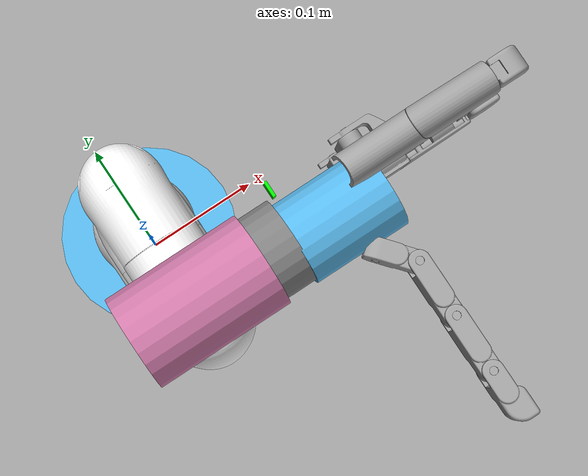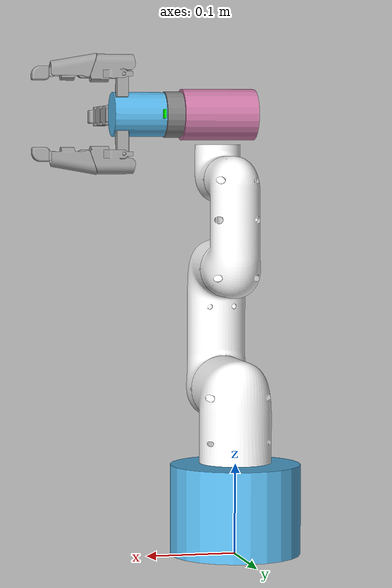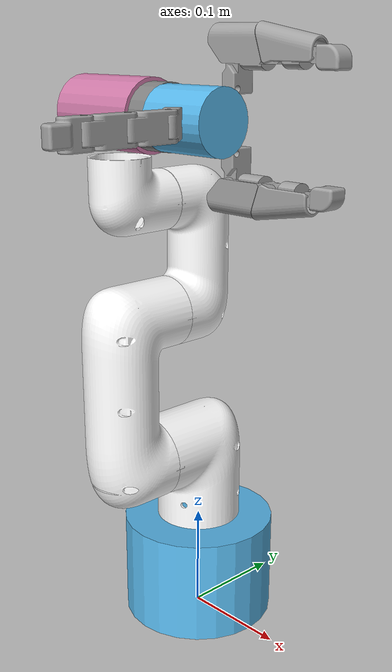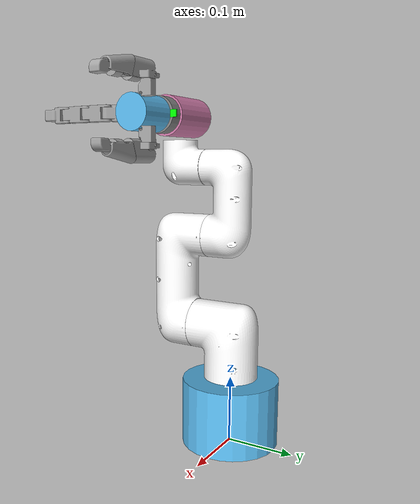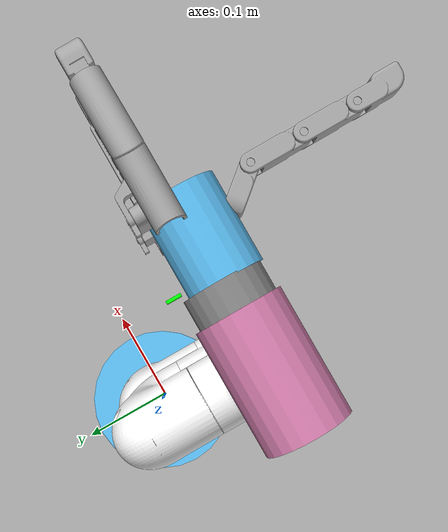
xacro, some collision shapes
<?xml version="1.0"?>
<robot xmlns:xacro="http://www.ros.org/wiki/xacro" name="mycobot_320_moveit">

    <link name="world" />
    <joint name="world2base" type="fixed">
        <parent link="world" />
        <child link="base_link" />
    </joint>
    <link name="base_link">
        <visual>
            <geometry>
                <mesh filename="package://mycobot_320_moveit/urdf/320_urdf/base.dae" />
            </geometry>
            <origin xyz="0 0 0 " rpy=" 0 0 3.1415926" />
        </visual>
        <collision>
            <origin xyz="0 0 0.05 " rpy=" 0 0 3.1415926" />
            <geometry>
                <cylinder length="0.100" radius="0.0725" />
            </geometry>
        </collision>
        <inertial>
            <mass value="1.0" />
            <inertia ixx="0.00218" iyy="0.00218" izz="0.00263" ixy="0.0" ixz="0.0" iyz="0.0" />

        </inertial>
    </link>
    <link name="link1">
        <visual>
            <geometry>
                <mesh filename="package://mycobot_320_moveit/urdf/320_urdf/link1_1.dae" />
            </geometry>
            <origin xyz="0 0 0 " rpy=" 0 0 0" />
        </visual>
        <collision>
            <origin xyz="0 0 -0.02 " rpy=" 0 0 0" />
            <geometry>
                <cylinder length="0.106" radius="0.043" />
            </geometry>
        </collision>
        <inertial>
            <mass value="0.5" />
            <inertia ixx="0.00070" iyy="0.00070" izz="0.00046" ixy="0.0" ixz="0.0" iyz="0.0" />

        </inertial>
    </link>
    <link name="link2">
        <visual>
            <geometry>
                <mesh filename="package://mycobot_320_moveit/urdf/320_urdf/link2.dae" />
            </geometry>
            <origin xyz="0 0 0.0587 " rpy=" 0 0 3.1415926" />
        </visual>
        <collision>
            <origin xyz="0.07 0 0.095 " rpy="0 -1.5708 0" />
            <geometry>
                <cylinder length="0.18" radius="0.036" />
            </geometry>
        </collision>
        <inertial>
            <mass value="0.7" />
            <inertia ixx="0.00212" iyy="0.00212" izz="0.00045" ixy="0.0" ixz="0.0" iyz="0.0" />
        </inertial>
    </link>
    <link name="link3">
        <visual>
            <geometry>
                <mesh filename="package://mycobot_320_moveit/urdf/320_urdf/link3.dae" />
            </geometry>
            <origin xyz="0 0 0.038 " rpy=" 0 0 3.1415926" />
        </visual>
        <collision>
            <origin xyz="0.044 0 0 " rpy=" 0 -1.5708 0" />
            <geometry>
                <cylinder length="0.14" radius="0.0305" />
            </geometry>
        </collision>
        <inertial>
            <mass value="0.5" />
            <inertia ixx="0.00093" iyy="0.00093" izz="0.00023" ixy="0.0" ixz="0.0" iyz="0.0" />

        </inertial>
    </link>
    <link name="link4">
        <visual>
            <geometry>
                <mesh filename="package://mycobot_320_moveit/urdf/320_urdf/link4.dae" />
            </geometry>
            <origin xyz="0 -0.001 0 " rpy=" 0 0 0" />
        </visual>
        <collision>
            <origin xyz="0.0 -0.014 0 " rpy=" 0 -1.5708 1.5708" />
            <geometry>
                <cylinder length="0.083" radius="0.029" />
            </geometry>
        </collision>
        <inertial>
            <mass value="0.2" />
            <inertia ixx="0.00016" iyy="0.00016" izz="0.00008" ixy="0.0" ixz="0.0" iyz="0.0" />

        </inertial>
    </link>
    <link name="link5">
        <visual>
            <geometry>
                <mesh filename="package://mycobot_320_moveit/urdf/320_urdf/link5.dae" />
            </geometry>
            <origin xyz="0 0.002  0 " rpy=" 0  0 3.1415926" />
        </visual>
        <collision>
            <origin xyz="0 0.0 0 " rpy=" 1.5708 1.5708 0" />
            <geometry>
                <cylinder length="0.0849" radius="0.029" />
            </geometry>
        </collision>
        <inertial>
            <mass value="0.2" />
            <inertia ixx="0.00016" iyy="0.00016" izz="0.00008" ixy="0.0" ixz="0.0" iyz="0.0" />

        </inertial>
    </link>
    <link name="link6">
        <visual>
            <geometry>
                <mesh filename="package://mycobot_320_moveit/urdf/320_urdf/link6.dae" />
            </geometry>
            <material name="grey">
                <color rgba="0.5 0.5 0.5 1" />
            </material>
            <origin xyz="-0.502 -0.090 -0.096 " rpy=" 0 1.5708 0" />
        </visual>
        <collision>
            <origin xyz="0.0 0 -0.015 " rpy=" 0 0 0" />
            <geometry>
                <cylinder length="0.022" radius="0.026" />
            </geometry>
        </collision>
        <inertial>
            <mass value="0.2" />
            <inertia ixx="0.00002" iyy="0.00002" izz="0.00003" ixy="0.0" ixz="0.0" iyz="0.0" />

        </inertial>
    </link>

    <joint name="arm_joint_0" type="revolute">
        <axis xyz="0 0 1" />
        <limit effort="100.0" lower="-2.96706" upper="2.96706" velocity="5" />
        <parent link="base_link" />
        <child link="link1" />
        <origin xyz="0 0 0.17846" rpy="0 0 0" />
    </joint>
    <joint name="arm_joint_1" type="revolute">
        <axis xyz="0 0 1" />
        <limit effort="100.0" lower="-2.7925268" upper="2.7925268" velocity="5" />
        <parent link="link1" />
        <child link="link2" />
        <origin xyz="0 0 0" rpy="0 -1.5708 1.5708" />
    </joint>
    <joint name="arm_joint_2" type="revolute">
        <axis xyz=" 0 0 1" />
        <limit effort="100.0" lower="-2.7925268" upper="2.7925268" velocity="5" />
        <parent link="link2" />
        <child link="link3" />
        <origin xyz="0.13635 0 0   " rpy="0 0 0" />
    </joint>
    <joint name="arm_joint_3" type="revolute">
        <axis xyz=" 0 0 1" />
        <limit effort="100.0" lower="-2.7925268" upper="2.7925268" velocity="5" />
        <parent link="link3" />
        <child link="link4" />
        <origin xyz="0.1 0 0.09 " rpy=" 0 0 1.57080" />
    </joint>
    <joint name="arm_joint_4" type="revolute">
        <axis xyz="0 0 1" />
        <limit effort="100.0" lower="-2.96706" upper="2.96706" velocity="5" />
        <parent link="link4" />
        <child link="link5" />
        <origin xyz="0 -0.07318 0" rpy="1.5708 -1.5708 0" />
    </joint>
    <joint name="arm_joint_5" type="revolute">
        <axis xyz="0 0 1" />
        <limit effort="100.0" lower="-3.054326" upper="3.054326" velocity="5" />
        <parent link="link5" />
        <child link="link6" />
        <origin xyz="0.00 0.06635 0" rpy="-1.5708 0 0" />
    </joint>

    <joint name="link6_to_magsensor" type="fixed">
        <parent link="link6" />
        <child link="magsensor" />
        <origin xyz="-0.03 -0.0 0.001" rpy="0 0 -1.5708 " />
    </joint>

    <link name="magsensor">
        <visual>
            <geometry>
                <box size="0.01 0.01 0.002" />
            </geometry>
            <material name="green">
                <color rgba="0 1 0  1" />
            </material>
            <origin xyz="0 0 0 " rpy=" 0 0 0" />
        </visual>
        <collision>
            <origin xyz="0.0 0 0.0 " rpy=" 0 0 0" />
            <geometry>
                <box size="0.01 0.002 0.01" />
            </geometry>
        </collision>
        <inertial>
            <mass value="0.2" />
            <inertia ixx="0.00002" iyy="0.00002" izz="0.00003" ixy="0.0" ixz="0.0" iyz="0.0" />

        </inertial>
    </link>

    <xacro:include filename="$(find mycobot_320_moveit)/urdf/k3hand.urdf.xacro" />
    <joint name="arm_to_hand" type="fixed">
        <parent link="link6" />
        <child link="wrist" />
        <origin xyz="-0.012  0 0.025" rpy="-1.57080 0 1.57080" />
    </joint>

    <xacro:macro name="transmission_macro" params="part index">
        <transmission name="${part}_tran_${index}">
            <type>transmission_interface/SimpleTransmission</type>
            <joint name="${part}_joint_${index}">
                <hardwareInterface>hardware_interface/PositionJointInterface</hardwareInterface>
            </joint>
            <actuator name="${part}_motor_${index}">
                <hardwareInterface>PositionJointInterface</hardwareInterface>
                <mechanicalReduction>1</mechanicalReduction>
            </actuator>
        </transmission>
    </xacro:macro>

    <xacro:transmission_macro index="0" part="arm" />
    <xacro:transmission_macro index="1" part="arm" />
    <xacro:transmission_macro index="2" part="arm" />
    <xacro:transmission_macro index="3" part="arm" />
    <xacro:transmission_macro index="4" part="arm" />
    <xacro:transmission_macro index="5" part="arm" />
    <xacro:transmission_macro index="0" part="hand" />
    <xacro:transmission_macro index="1" part="hand" />
    <xacro:transmission_macro index="2" part="hand" />
    <xacro:transmission_macro index="3" part="hand" />
    <xacro:transmission_macro index="4" part="hand" />
    <xacro:transmission_macro index="5" part="hand" />
    <xacro:transmission_macro index="6" part="hand" />
    <xacro:transmission_macro index="7" part="hand" />
    <!--ros_control
  plugin-->
    <gazebo>
        <plugin name="gazebo_ros_control" filename="libgazebo_ros_control.so" />
    </gazebo>
    <!--joint_state_publisher
  plugin-->
    <gazebo>
        <plugin name="joint_state_publisher" filename="libgazebo_ros_joint_state_publisher.so">
            <jointName>arm_joint_0, arm_joint_1, arm_joint_2, arm_joint_3, arm_joint_4, arm_joint_5,
                hand_joint_0, hand_joint_1, hand_joint_2, hand_joint_3, hand_joint_4, hand_joint_5,
                hand_joint_6, hand_joint_7</jointName>
        </plugin>
    </gazebo>
</robot>

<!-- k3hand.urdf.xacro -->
<robot xmlns:xacro="http://ros.org/wiki/xacro" name="k3hand">

  <link name="wrist">
    <visual>
      <geometry>
        <mesh filename="package://mycobot_320_moveit/urdf/k3_urdf/wrist.dae" />
      </geometry>
      <origin xyz="0 0 0" rpy="0 0 0" />
    </visual>
    <collision>
      <geometry>
        <cylinder length="0.06" radius="0.025" />
      </geometry>
      <origin xyz="0 0 -0.015" rpy="-1.570796 0 0" />
    </collision>
    <inertial>
      <mass value="0.1" />
      <inertia ixx="1.0" ixy="0.0" ixz="0.0" iyy="1.0" iyz="0.0" izz="1.0" />
    </inertial>
  </link>
  <link name="thumb_met">
    <visual>
      <geometry>
        <mesh filename="package://mycobot_320_moveit/urdf/k3_urdf/thumb_met.dae" />
      </geometry>
      <origin xyz="0.0 0.0080 0.043" rpy="0 0 0" />
    </visual>
    <collision>
      <geometry>
        <box size="0.0225 0.035 0.012" />
      </geometry>
      <origin xyz="0.0 -0.007 -0.008" rpy="0.88 0 0" />
    </collision>
    <inertial>
      <mass value="0.01" />
      <inertia ixx="1.0" ixy="0.0" ixz="0.0" iyy="1.0" iyz="0.0" izz="1.0" />
    </inertial>
  </link>
  <link name="thumb_middle_1">
    <visual>
      <geometry>
        <mesh filename="package://mycobot_320_moveit/urdf/k3_urdf/thumb_middle_1.dae" />
      </geometry>
      <origin xyz="0.0 0.0225 0.0607" />
    </visual>
    <collision>
      <geometry>
        <box size="0.0225 0.012 0.05" />
      </geometry>
      <origin xyz="0.0 0.0 -0.02" rpy="0 0 0" />
    </collision>
    <inertial>
      <mass value="0.01" />
      <inertia ixx="1.0" ixy="0.0" ixz="0.0" iyy="1.0" iyz="0.0" izz="1.0" />
    </inertial>
  </link>
  <link name="thumb_middle_2">
    <visual>
      <geometry>
        <mesh filename="package://mycobot_320_moveit/urdf/k3_urdf/thumb_middle_2.dae" />
      </geometry>
      <origin xyz="0.0 0.0225 0.0965" />
    </visual>
    <collision>
      <geometry>
        <box size="0.0225 0.012 0.05" />
      </geometry>
      <origin xyz="0.0 0.0 -0.02" rpy="0 0 0" />
    </collision>
    <inertial>
      <mass value="0.01" />
      <inertia ixx="1.0" ixy="0.0" ixz="0.0" iyy="1.0" iyz="0.0" izz="1.0" />
    </inertial>
  </link>

  <link name="thumb_tip">
    <visual>
      <geometry>
        <mesh filename="package://mycobot_320_moveit/urdf/k3_urdf/thumb_tip.dae" />
      </geometry>
      <origin xyz="0.0 0.0225 0.1325" />
    </visual>
    <collision>
      <geometry>
        <box size="0.0225 0.015 0.040" />
      </geometry>
      <origin xyz="0.0 -0.0015 -0.015" rpy="0 0 0" />
    </collision>
    <inertial>
      <mass value="0.01" />
      <inertia ixx="1.0" ixy="0.0" ixz="0.0" iyy="1.0" iyz="0.0" izz="1.0" />
    </inertial>
  </link>

  <link name="fing_met_1">
    <visual>
      <geometry>
        <mesh filename="package://mycobot_320_moveit/urdf/k3_urdf/fing_met_1.dae" />
      </geometry>
      <origin xyz="0.0225 0.0225 0.00" rpy="0.0 0.0 0.0" />
    </visual>
    <collision>
      <geometry>
        <box size="0.020 0.012 0.03" />
      </geometry>
      <origin xyz="0.006 -0.0 0.011" />
    </collision>

    <inertial>
      <mass value="0.01" />
      <inertia ixx="1.0" ixy="0.0" ixz="0.0" iyy="1.0" iyz="0.0" izz="1.0" />
    </inertial>
  </link>

  <link name="fing_base_1">
    <visual>
      <geometry>
        <mesh filename="package://mycobot_320_moveit/urdf/k3_urdf/fing_base_1.dae" />
      </geometry>
      <origin xyz="0.015 0.0225 -0.022" />
    </visual>
    <collision>
      <geometry>
        <box size="0.030 0.03 0.05" />
      </geometry>
      <origin xyz="-0.002 0.008 0.01" />
    </collision>
    <inertial>
      <mass value="0.01" />
      <inertia ixx="1.0" ixy="0.0" ixz="0.0" iyy="1.0" iyz="0.0" izz="1.0" />
    </inertial>
  </link>

  <link name="fing_middle_1">
    <visual>
      <geometry>
        <mesh filename="package://mycobot_320_moveit/urdf/k3_urdf/fing_middle_1.dae" />
      </geometry>
      <origin xyz="0.015 0.0225 -0.022" />
    </visual>
    <collision>
      <geometry>
        <box size="0.020 0.03 0.05" />
      </geometry>
      <origin xyz="-0.007 0.008 0.058" />
    </collision>
    <inertial>
      <mass value="0.01" />
      <inertia ixx="1.0" ixy="0.0" ixz="0.0" iyy="1.0" iyz="0.0" izz="1.0" />
    </inertial>
  </link>
  <link name="fing_tip_1">
    <visual>
      <geometry>
        <mesh filename="package://mycobot_320_moveit/urdf/k3_urdf/fing_tip_1.dae" />
      </geometry>
      <origin xyz="0.015 0.0225 -0.022" />
    </visual>
    <collision>
      <geometry>
        <box size="0.020 0.015 0.02" />
      </geometry>
      <origin xyz="-0.007 0.00 0.09" />
    </collision>
    <inertial>
      <mass value="0.01" />
      <inertia ixx="1.0" ixy="0.0" ixz="0.0" iyy="1.0" iyz="0.0" izz="1.0" />
    </inertial>
  </link>

  <link name="fing_met_2">
    <visual>
      <geometry>
        <mesh filename="package://mycobot_320_moveit/urdf/k3_urdf/fing_met_2.dae" />
      </geometry>
      <origin xyz="-0.0225 0.0225 0.00" rpy="0.0 0.0 0.0" />
    </visual>
    <collision>
      <geometry>
        <box size="0.020 0.0120 0.03" />
      </geometry>
      <origin xyz="-0.006 -0.0 0.011" />
    </collision>

    <inertial>
      <mass value="0.01" />
      <inertia ixx="1.0" ixy="0.0" ixz="0.0" iyy="1.0" iyz="0.0" izz="1.0" />
    </inertial>
  </link>
  <link name="fing_base_2">
    <visual>
      <geometry>
        <mesh filename="package://mycobot_320_moveit/urdf/k3_urdf/fing_base_2.dae" />
      </geometry>
      <origin xyz="-0.015 0.0225 -0.022" />
    </visual>
    <collision>
      <geometry>
        <box size="0.030 0.03 0.05" />
      </geometry>
      <origin xyz="0.002 0.008 0.01" />
    </collision>
    <inertial>
      <mass value="0.01" />
      <inertia ixx="1.0" ixy="0.0" ixz="0.0" iyy="1.0" iyz="0.0" izz="1.0" />
    </inertial>
  </link>

  <link name="fing_middle_2">
    <visual>
      <geometry>
        <mesh filename="package://mycobot_320_moveit/urdf/k3_urdf/fing_middle_2.dae" />
      </geometry>
      <origin xyz="-0.015 0.0225 -0.022" />
    </visual>
    <collision>
      <geometry>
        <box size="0.020 0.03 0.05" />
      </geometry>
      <origin xyz="0.007 0.008 0.058" />
    </collision>
    <inertial>
      <mass value="0.01" />
      <inertia ixx="1.0" ixy="0.0" ixz="0.0" iyy="1.0" iyz="0.0" izz="1.0" />
    </inertial>
  </link>
  <link name="fing_tip_2">
    <visual>
      <geometry>
        <mesh filename="package://mycobot_320_moveit/urdf/k3_urdf/fing_tip_2.dae" />
      </geometry>
      <origin xyz="-0.015 0.0225 -0.022" />
    </visual>
    <collision>
      <geometry>
        <box size="0.020 0.015 0.02" />
      </geometry>
      <origin xyz="0.007 0.0 0.09" />
    </collision>
    <inertial>
      <mass value="0.01" />
      <inertia ixx="1.0" ixy="0.0" ixz="0.0" iyy="1.0" iyz="0.0" izz="1.0" />
    </inertial>
  </link>

  <joint name="hand_joint_0" type="revolute">
    <axis xyz="0.0 -1.0 0.0" />
    <parent link="wrist" />
    <child link="fing_met_1" />
    <origin xyz="-0.0225 -0.0225 0.00" rpy="0 -1.570796 0" />
    <limit lower="-1.570796" upper="0.523599" effort="0.0" velocity="1" />
  </joint>
  <joint name="hand_joint_1" type="revolute">
    <axis xyz="1.0 0.0 0" />
    <parent link="fing_met_1" />
    <child link="fing_base_1" />
    <origin xyz="0.0075 -0.0 0.022" rpy="1.570796 0.0 0.0" />
    <limit lower="-1.570796" upper="1.579796" effort="0.0" velocity="1" />
  </joint>
  <joint name="hand_joint_2" type="revolute">
    <axis xyz="0.0 -1.0 0.0" />
    <parent link="wrist" />
    <child link="fing_met_2" />
    <origin xyz="0.0225 -0.0225 0.00" rpy="0.0 1.570796 0" />
    <limit lower="-0.523599" upper="1.570796" effort="0.0" velocity="1" />
  </joint>
  <joint name="hand_joint_3" type="revolute">
    <axis xyz="-1.0 0.0 0" />
    <parent link="fing_met_2" />
    <child link="fing_base_2" />
    <origin xyz="-0.0075 -0.0 0.022" rpy="1.570796 0.0 0.0" />
    <limit lower="-1.570796" upper="1.570796" effort="0.0" velocity="1" />
  </joint>
  <joint name="hand_joint_4" type="revolute">
    <axis xyz="0.0 1 -1.21" />
    <parent link="wrist" />
    <child link="thumb_met" />
    <origin rpy="0 0 0" xyz="0 -0.0080 -0.043" />
    <limit lower="-1.570796" upper="1.570796" effort="30.0" velocity="1.0" />
  </joint>

  <joint name="hand_joint_5" type="revolute">
    <axis xyz="-1 0.0 0.0" />
    <parent link="thumb_met" />
    <child link="thumb_middle_1" />
    <origin rpy="0 0 0" xyz="0 -0.0145 -0.0177" />
    <limit lower="-0.8726646" upper="2.268928" effort="0.0" velocity="1" />
  </joint>
  <joint name="hand_joint_6" type="revolute">
    <axis xyz="-1 0.0 0.0" />
    <parent link="thumb_middle_1" />
    <child link="thumb_middle_2" />
    <origin rpy="0 0 0" xyz="0 0.0 -0.0358" />
    <limit lower="-1.570796" upper="1.570796" effort="0.0" velocity="1" />
  </joint>
  <joint name="hand_joint_7" type="revolute">
    <axis xyz="-1 0.0 0.0" />
    <parent link="thumb_middle_2" />
    <child link="thumb_tip" />
    <origin rpy="0 0 0" xyz="0 0 -0.036" />
    <limit lower="-1.570796" upper="1.570796" effort="0.0" velocity="1" />
  </joint>

  <joint name="fing_fixed_joint_1_1" type="fixed">
    <parent link="fing_base_1" />
    <child link="fing_middle_1" />
    <origin rpy="0 0 0" xyz="0 0 0.0" />
  </joint>
  <joint name="fing_fixed_joint_1_2" type="fixed">
    <parent link="fing_middle_1" />
    <child link="fing_tip_1" />
    <origin rpy="0 0 0" xyz="0 0 0.0" />
  </joint>
  <joint name="fing_fixed_joint_2_1" type="fixed">
    <parent link="fing_base_2" />
    <child link="fing_middle_2" />
    <origin rpy="0 0 0" xyz="0 0 0.0" />
  </joint>
  <joint name="fing_fixed_joint_2_2" type="fixed">
    <parent link="fing_middle_2" />
    <child link="fing_tip_2" />
    <origin rpy="0 0 0" xyz="0 0 0.0" />
  </joint>

</robot>
